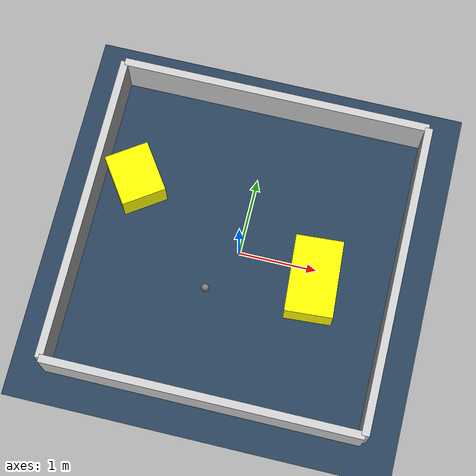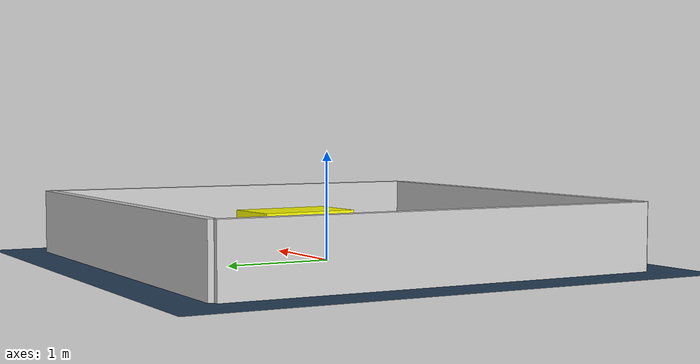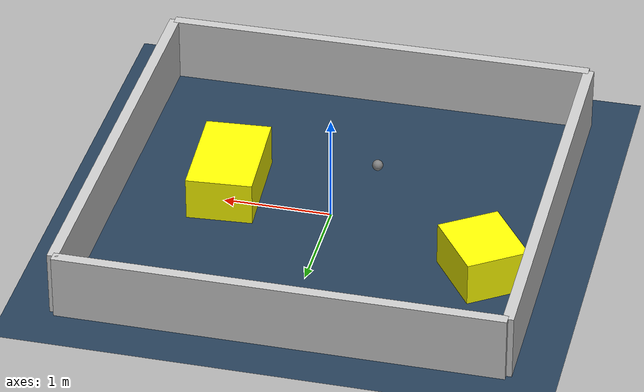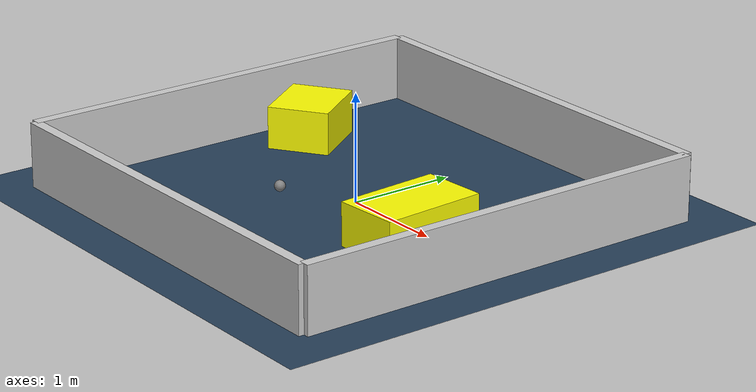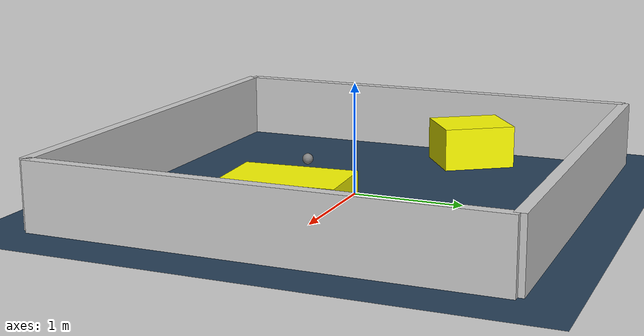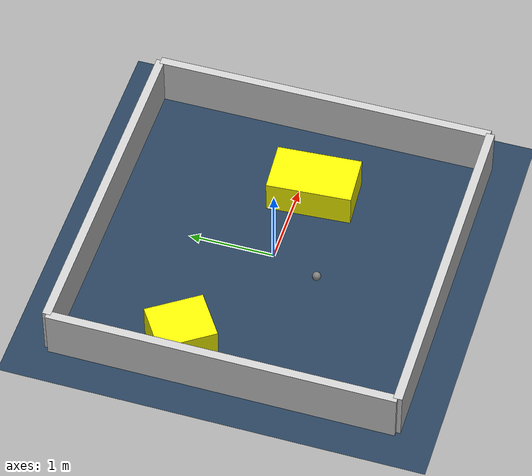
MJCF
<?xml version="1.0" ?>
<mujoco model="generated_environment">
  <option timestep="0.01" integrator="RK4" cone="elliptic"/>
  <default>
    <geom density="1"/>
  </default>
  <asset>
    <texture builtin="gradient" height="3072" rgb1="0.3 0.5 0.7" rgb2="0 0 0" type="skybox" width="512"/>
    <texture builtin="checker" height="300" mark="edge" markrgb="0.8 0.8 0.8" name="groundplane" rgb1="0.2 0.3 0.4" rgb2="0.1 0.2 0.3" type="2d" width="300"/>
    <material name="groundplane" reflectance="0.2" texrepeat="5 5" texture="groundplane" texuniform="true"/>
    <material name="robot" rgba="0.0 1.0 0.0 1"/>
  </asset>
  <worldbody>
    <light dir="0 0 -1" directional="true" pos="0 0 1.5"/>
    <geom condim="4" friction="1.0 0.005 0.001" material="groundplane" name="floor" size="0 0 0.05" type="plane"/>
    <body name="walls">
      <geom name="wall_1" condim="4" pos="-2.0 0.0 0.3" rgba="0.800000011920929 0.800000011920929 0.800000011920929 1.0" size="0.05 2.0 0.3" type="box"/>
      <geom name="wall_2" condim="4" pos="2.0 0.0 0.3" rgba="0.800000011920929 0.800000011920929 0.800000011920929 1.0" size="0.05 2.0 0.3" type="box"/>
      <geom name="wall_3" condim="4" pos="0.0 -2.0 0.3" rgba="0.800000011920929 0.800000011920929 0.800000011920929 1.0" size="2.0 0.05 0.3" type="box"/>
      <geom name="wall_4" condim="4" pos="0.0 2.0 0.3" rgba="0.800000011920929 0.800000011920929 0.800000011920929 1.0" size="2.0 0.05 0.3" type="box"/>
    </body>
    <body name="robot">
      <joint name="joint_x" type="slide" pos="0 0 0" axis="1 0 0"/>
      <joint name="joint_y" type="slide" pos="0 0 0" axis="0 1 0"/>
      <geom name="robot" type="sphere" pos="-0.2998828227880963 -0.5939417039727959 0.2" size="0.05" mass="5." friction="1.0 0.005 0.0001" condim="4"/>
      <site name="sensor_ball"/>
    </body>
    <body name="obstacle_1_movable">
      <geom name="obstacle_1_movable" condim="4" pos="0.9973613368530116 -0.17940629372239858 0.2" euler="0 0 3.7713512766538093" friction="1.0 0.005 0.001" rgba="1 1 0 1" size="0.30421930206411546 0.4974290799275215 0.2" type="box" mass="0.1"/>
      <joint type="free"/>
    </body>
    <body name="obstacle_2_movable">
      <geom name="obstacle_2_movable" condim="4" pos="-1.5148111679613936 0.6124952613015369 0.2" euler="0 0 304.42733875970237" friction="1.0 0.005 0.001" rgba="1 1 0 1" size="0.3418687081150462 0.28945543006605245 0.2" type="box" mass="0.1"/>
      <joint type="free"/>
    </body>
  </worldbody>
  <actuator>
    <motor name="actuator_x" joint="joint_x" gear="1" ctrlrange="-1 1"/>
    <motor name="actuator_y" joint="joint_y" gear="1" ctrlrange="-1 1"/>
  </actuator>
</mujoco>
